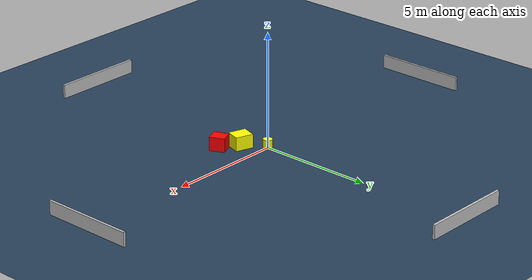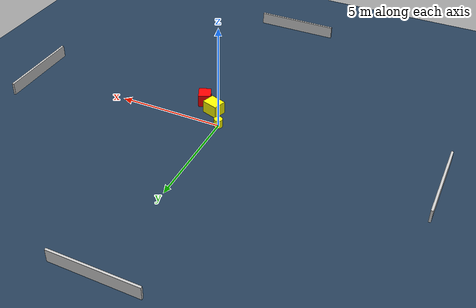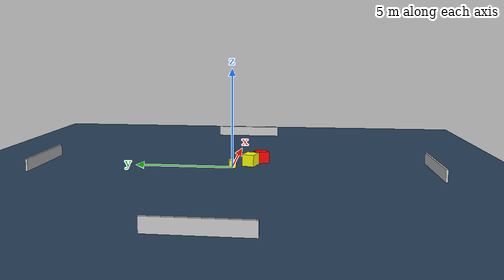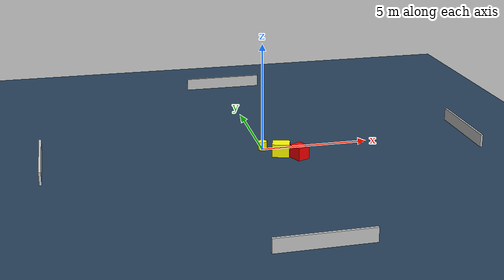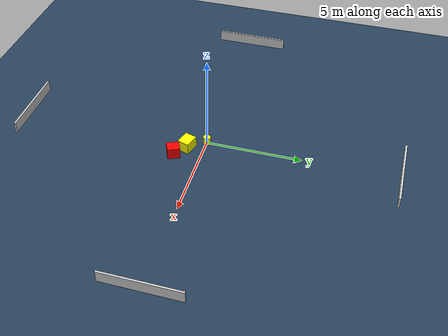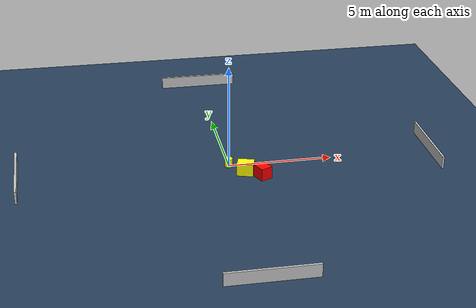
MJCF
<?xml version="1.0" ?>
<mujoco model="generated_environment">
  <option timestep="0.01" integrator="RK4" cone="elliptic"/>
  <default>
    <geom density="1"/>
  </default>
  <asset>
    <texture builtin="gradient" height="3072" name="skybox" rgb1="0.3 0.5 0.7" rgb2="0 0 0" type="skybox" width="512"/>
    <texture builtin="checker" height="300" name="groundplane" rgb1="0.2 0.3 0.4" rgb2="0.1 0.2 0.3" type="2d" width="300"/>
    <material name="groundplane" reflectance="0.2" texrepeat="5 5" texture="groundplane"/>
  </asset>
  <worldbody>
    <light dir="0 0 -1" directional="true" pos="0 0 1.5"/>
    <geom condim="3" friction="0.5 0.005 0.001" material="groundplane" name="floor" pos="0 0 0" size="0 0 0.05" type="plane"/>
    <body name="walls">
      <geom name="wall_1" condim="4" pos="-10.0 0.0 0.3" rgba="0.800000011920929 0.800000011920929 0.800000011920929 1.0" size="0.05 2.0 0.3" type="box"/>
      <geom name="wall_2" condim="4" pos="10.0 0.0 0.3" rgba="0.800000011920929 0.800000011920929 0.800000011920929 1.0" size="0.05 2.0 0.3" type="box"/>
      <geom name="wall_3" condim="4" pos="0.0 -10.0 0.3" rgba="0.800000011920929 0.800000011920929 0.800000011920929 1.0" size="2.0 0.05 0.3" type="box"/>
      <geom name="wall_4" condim="4" pos="0.0 10.0 0.3" rgba="0.800000011920929 0.800000011920929 0.800000011920929 1.0" size="2.0 0.05 0.3" type="box"/>
    </body>
    <body name="robot">
      <joint name="joint_x" type="slide" pos="0 0 0" axis="1 0 0"/>
      <joint name="joint_y" type="slide" pos="0 0 0" axis="0 1 0"/>
      <geom name="robot" type="cylinder" pos="0.0 0.0 0.2" size="0.2 0.2 0.0" mass="5.0" friction="1.0 0.005 0.0001" condim="4" rgba="1.0 1.0 0.0 1.0"/>
    </body>
    <body name="obstacle_1_movable">
      <geom name="obstacle_1_movable" condim="4" pos="0.6580234253068058 -0.8820750202901618 0.3" euler="0 0 252.19695587473709" friction="0.0 0.005 0.001" rgba="1.0 1.0 0.0 1.0" size="0.31527177351710145 0.39121345495622784 0.3" type="box" mass="0.1"/>
      <joint type="free"/>
    </body>
    <body name="obstacle_2_static">
      <geom name="obstacle_2_static" condim="4" pos="1.3845985371955891 -1.3942712613425707 0.3" euler="0 0 113.87588566357842" friction="0.0 0.005 0.001" rgba="1.0 0.0 0.0 1.0" size="0.3273123021756251 0.29391953254699466 0.3" type="box"/>
    </body>
  </worldbody>
  <actuator>
    <motor name="actuator_x" joint="joint_x" gear="1" ctrlrange="-1 1"/>
    <motor name="actuator_y" joint="joint_y" gear="1" ctrlrange="-1 1"/>
  </actuator>
</mujoco>
